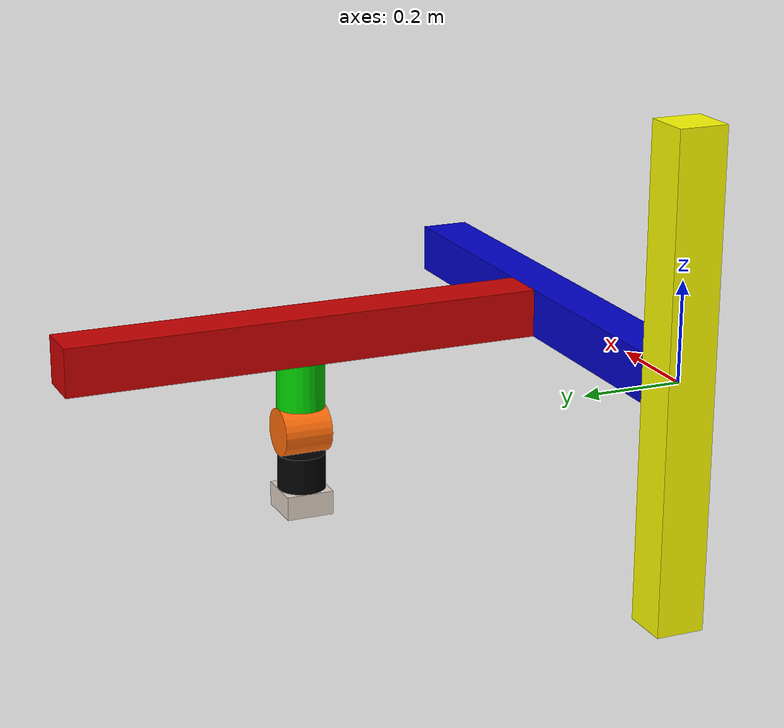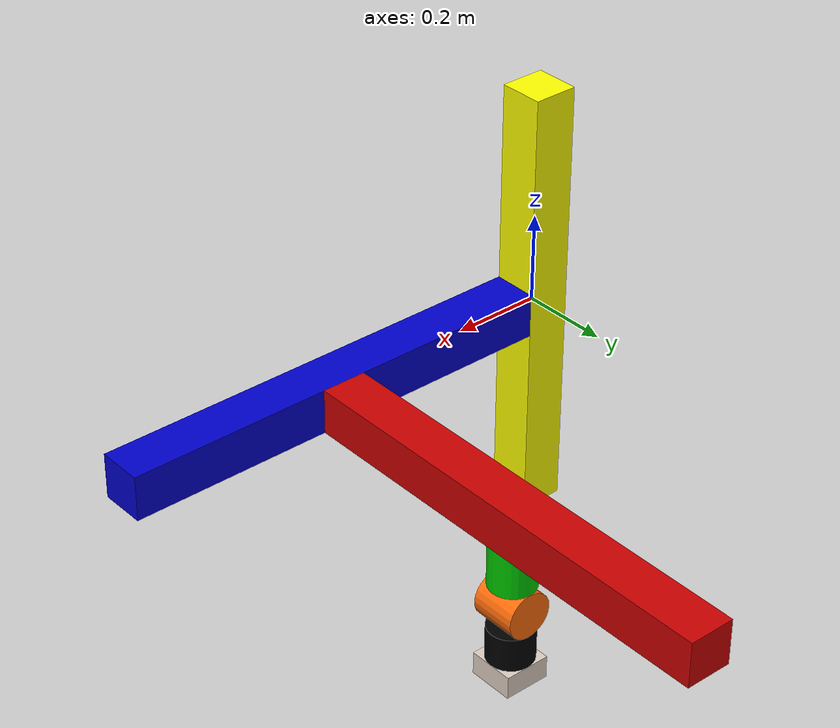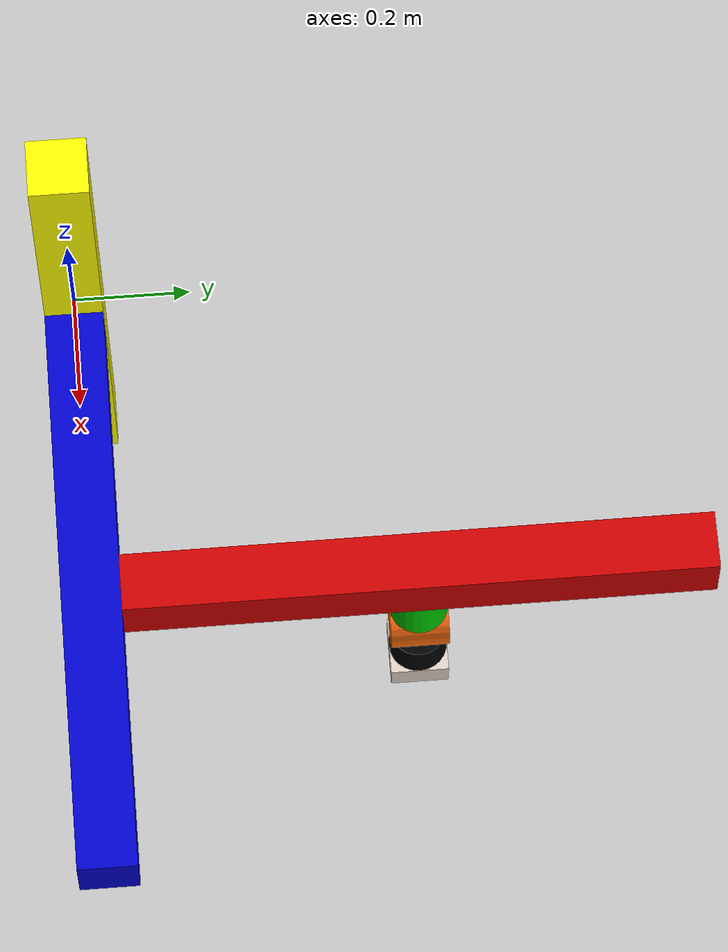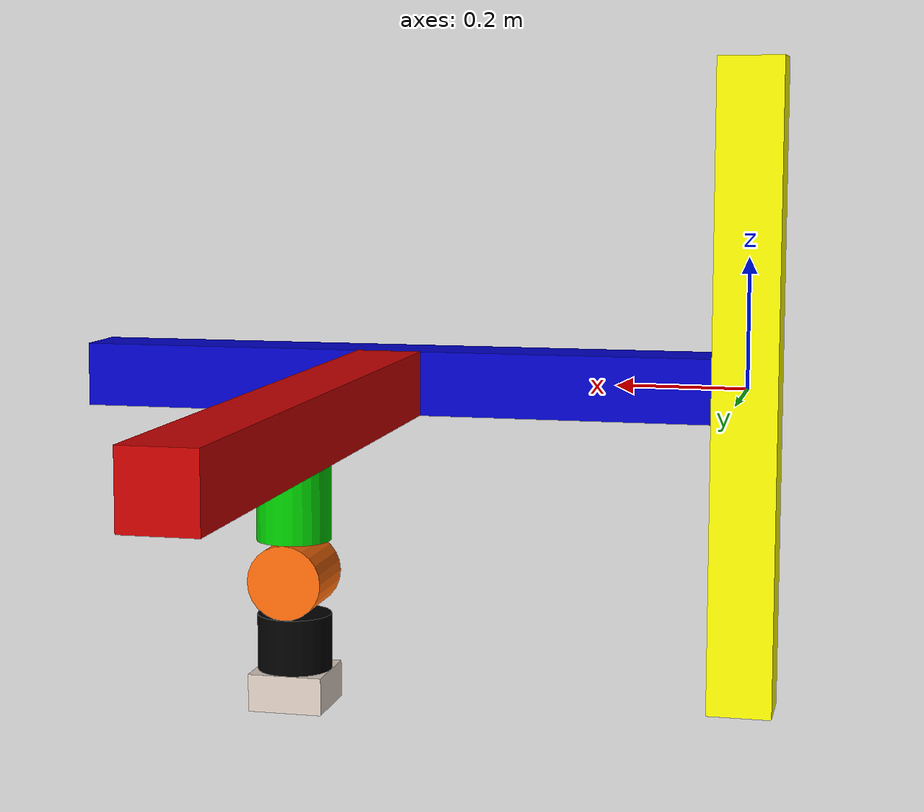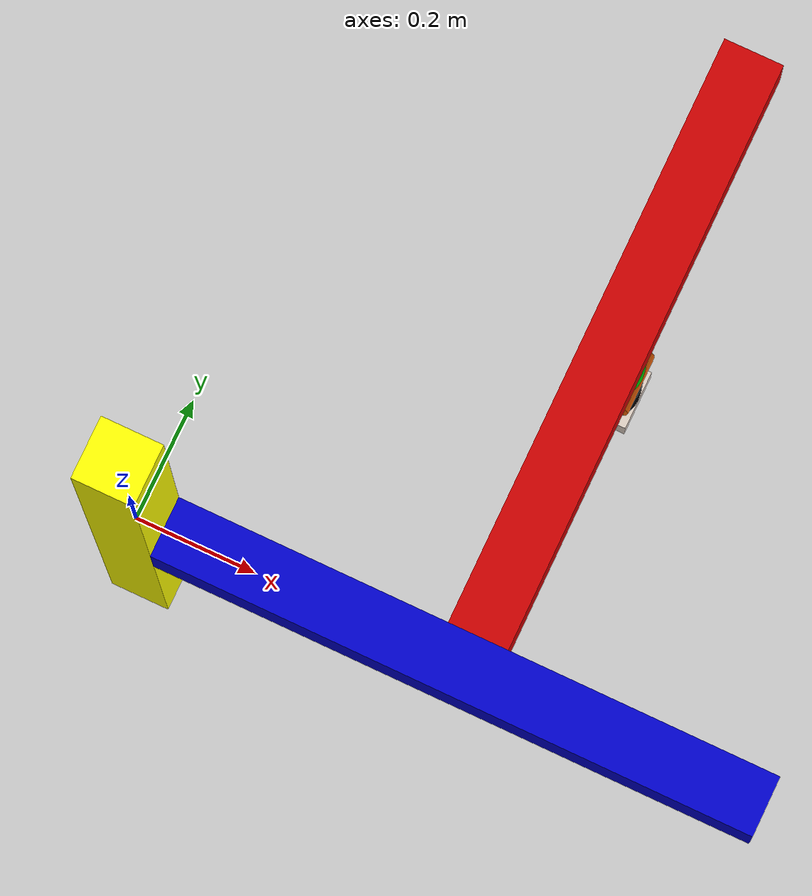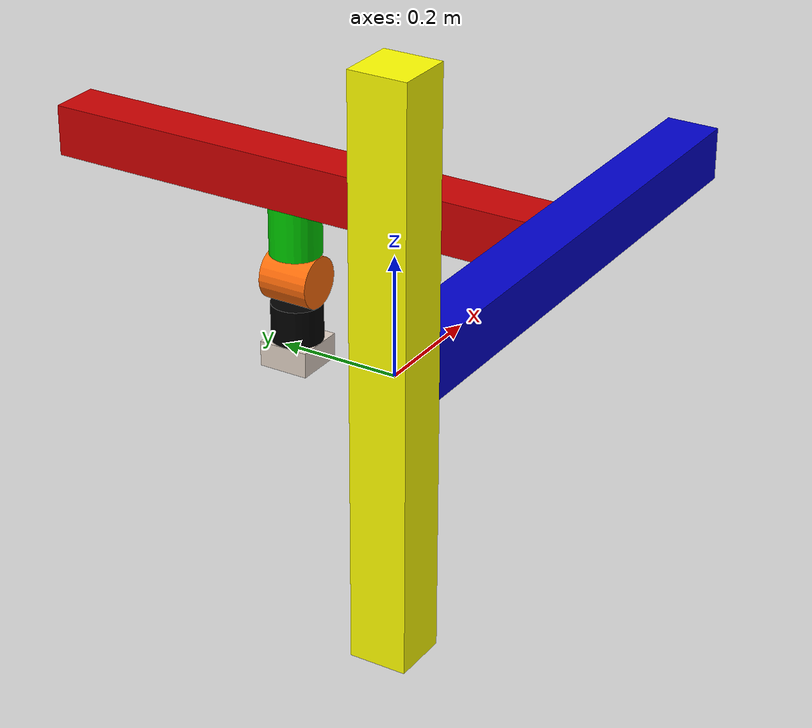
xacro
<?xml version='1.0'?>

<robot name="orientable_cartesian" xmlns:xacro="http://www.ros.org/wiki/xacro">

  <!-- MATERIALS -->
  <xacro:include filename="$(find orientable_cartesian)/urdf/materials.xacro" />

  <!-- ******************* WORLD LINK ******************* -->
  <link name="world">
    <origin xyz="0 0 0.5" rpy="0 0 0" />
  </link>

  <!-- ******************* BASE LINK ******************** -->
  <link name="base_link">
  	<visual>
  	  <geometry>
        <box size="0.1 0.1 1.0"/>
  	  </geometry>
      <material name="yellow"/>
  	</visual>

    <collision>
      <geometry>
        <box size="0.1 0.1 1.0"/>
      </geometry>
    </collision>

    <inertial>
      <mass value="0.1405"/>
      <inertia
        ixx="0.011825416666666668" ixy="0.0" ixz="0.0"
        iyy="0.00023416666666666673" iyz="0.0"
        izz="0.011825416666666668"/>
    </inertial>
  </link>

  <!-- ******************** LINK-1 ********************** -->
  <link name="link1">
  	<visual>
  	  <geometry>
        <box size="1.0 0.1 0.1"/>
  	  </geometry>
  	  <material name="blue"/>
  	</visual>

    <collision>
      <geometry>
        <box size="1.0 0.1 0.1"/>
      </geometry>
    </collision>

    <inertial>
      <mass value="0.1405"/>
      <inertia
        ixx="0.011825416666666668" ixy="0.0" ixz="0.0"
        iyy="0.00023416666666666673" iyz="0.0"
        izz="0.011825416666666668"/>
    </inertial>
  </link>

  <!-- ******************** LINK-2 ********************** -->
  <link name="link2">
  	<visual>
  	  <geometry>
        <box size="0.1 1.0 0.1"/>
  	  </geometry>
  	  <material name="red"/>
  	</visual>

    <collision>
      <geometry>
        <box size="0.1 1.0 0.1"/>
      </geometry>
    </collision>

    <inertial>
      <mass value="0.1405"/>
      <inertia
        ixx="0.011825416666666668" ixy="0.0" ixz="0.0"
        iyy="0.00023416666666666673" iyz="0.0"
        izz="0.011825416666666668"/>
    </inertial>
  </link>

  <!-- ******************** LINK-3 ********************** -->
  <link name="link3">
  	<visual>
  	  <geometry>
        <cylinder radius="0.05" length="0.1" />
  	  </geometry>
  	  <material name="green"/>
  	</visual>

    <collision>
      <geometry>
        <cylinder radius="0.05" length="0.1" />
      </geometry>
    </collision>

    <inertial>
      <mass value="0.028100"/>
      <inertia
        ixx="0.00011708" ixy="0.0" ixz="0.0"
        iyy="0.000046833" iyz="0.0"
        izz="0.00011708"/>
    </inertial>
  </link>

  <!-- ******************** LINK-4 ********************** -->
  <link name="link4">
  	<visual>
  	  <geometry>
        <cylinder radius="0.05" length="0.1" />
  	  </geometry>
  	  <material name="orange"/>
  	</visual>

    <collision>
      <geometry>
        <cylinder radius="0.05" length="0.1" />
      </geometry>
    </collision>

    <inertial>
      <mass value="0.028100"/>
      <inertia
        ixx="0.00011708" ixy="0.0" ixz="0.0"
        iyy="0.000046833" iyz="0.0"
        izz="0.00011708"/>
    </inertial>
  </link>

  <!-- ******************** LINK-5 ********************** -->
  <link name="link5">
  	<visual>
      <origin xyz="0 0 0.1" rpy="0 0 0" />
  	  <geometry>
        <cylinder radius="0.05" length="0.1" />
  	  </geometry>
  	  <material name="black"/>
  	</visual>

    <collision>
      <origin xyz="0 0 0.1" rpy="0 0 0" />
      <geometry>
        <cylinder radius="0.05" length="0.1" />
      </geometry>
    </collision>

    <inertial>
      <mass value="0.028100"/>
      <inertia
        ixx="0.00011708" ixy="0.0" ixz="0.0"
        iyy="0.000046833" iyz="0.0"
        izz="0.00011708"/>
    </inertial>
  </link>

  <!-- ******************** FALNGE ********************** -->
  <link name="flange">
  	<visual>
      <origin xyz="0 0 0" rpy="0 0 0" />
  	  <geometry>
        <box size="0.1 0.1 0.05"/>
  	  </geometry>
  	  <material name="brown"/>
  	</visual>

    <collision>
      <geometry>
        <box size="0.1 0.1 0.05"/>
      </geometry>
    </collision>

    <inertial>
      <mass value="0.028100"/>
      <inertia
        ixx="0.00011708" ixy="0.0" ixz="0.0"
        iyy="0.000046833" iyz="0.0"
        izz="0.00011708"/>
    </inertial>
  </link>

  <!-- ********************* JOINTS ********************* -->
  <joint name="world_joint"  type="fixed">
    <parent link="world"/>
    <child link="base_link"/>
    <origin xyz="0 0 0" rpy="0 0 0" />
  </joint>

  <joint name="cartesian_z" type="prismatic">
    <limit lower="-0.45" upper="0.45" effort="12" velocity="2.443"/>
  	<parent link="base_link" />
  	<child link="link1" />
    <origin xyz="0.55 0 0" rpy="0 0 0"/>
    <axis xyz="0 0 1" />
  </joint>

  <joint name="cartesian_x" type="prismatic">
    <limit lower="-0.45" upper="0.45" effort="12" velocity="2.443"/>
  	<parent link="link1" />
  	<child link="link2" />
    <origin xyz="0 0.55 0" rpy="0 0 0"/>
    <axis xyz="1 0 0" />
  </joint>

  <joint name="cartesian_y" type="prismatic">
    <limit lower="-0.45" upper="0.45" effort="12" velocity="2.443"/>
  	<parent link="link2" />
  	<child link="link3" />
    <origin xyz="0 0 -0.1" rpy="0 0 0"/>
    <axis xyz="0 1 0" />
  </joint>

  <joint name="orientation_yaw" type="revolute">
    <limit lower="-3.14" upper="3.14" effort="12" velocity="2.443"/>
  	<parent link="link3" />
  	<child link="link4" />
    <origin xyz="0 0 -0.1" rpy="1.570796 0 0"/>
    <axis xyz="0 1 0"/>
  </joint>

  <joint name="orientation_pitch" type="revolute">
    <limit lower="-1.570796" upper="1.570796" effort="12" velocity="2.443"/>
  	<parent link="link4" />
  	<child link="link5" />
    <origin xyz="0 0 0" rpy="1.570796 0 0"/>
    <axis xyz="0 1 0"/>
  </joint>

  <joint name="orientation_roll" type="revolute">
    <limit lower="-3.14" upper="3.14" effort="12" velocity="2.443"/>
  	<parent link="link5" />
  	<child link="flange" />
    <origin xyz="0 0 0.15" rpy="0 0 0"/>
    <axis xyz="0 0 1"/>
  </joint>

</robot>

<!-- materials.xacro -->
<robot>

  <material name="yellow">
    <color rgba="1.0 1.0 0.0 1.0" />
  </material>

  <material name="black">
    <color rgba="0.0 0.0 0.0 1.0"/>
  </material>

  <material name="blue">
    <color rgba="0.0 0.0 0.8 1.0"/>
  </material>

  <material name="green">
    <color rgba="0.0 0.8 0.0 1.0"/>
  </material>

  <material name="grey">
    <color rgba="0.2 0.2 0.2 1.0"/>
  </material>

  <material name="orange">
    <color rgba="${255/255} ${108/255} ${10/255} 1.0"/>
  </material>

  <material name="brown">
    <color rgba="${222/255} ${207/255} ${195/255} 1.0"/>
  </material>

  <material name="red">
    <color rgba="0.8 0.0 0.0 1.0"/>
  </material>

  <material name="white">
    <color rgba="1.0 1.0 1.0 1.0"/>
  </material>

</robot>
